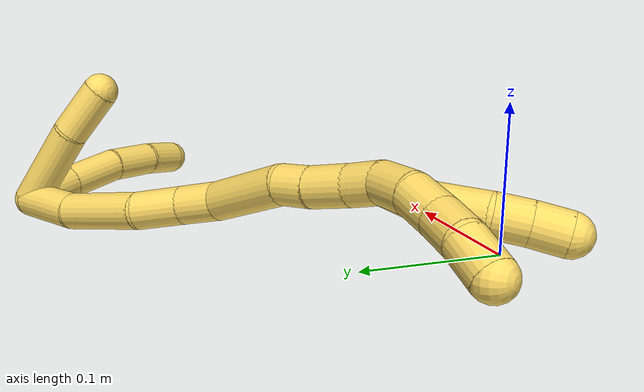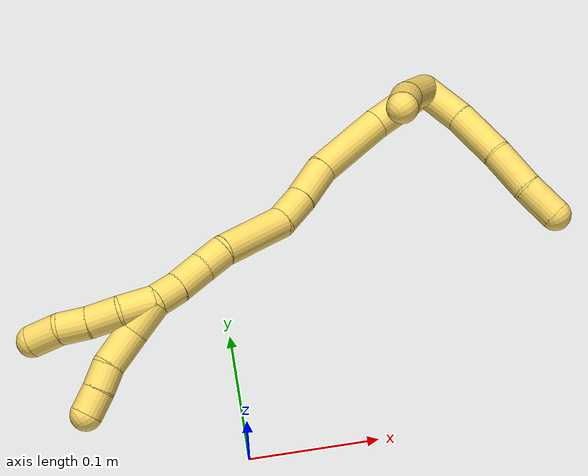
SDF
<sdf version="1.7">
 <world name="default">
  <model name="5">
   <static>0</static>
   <link name="5">
    <collision name="collision-cylinder-e_1_2_8">
     <pose>0.007022 0.017968 0.002746 -1.41915 0.368649 -0.317533</pose>
     <geometry><cylinder><radius>0.0125</radius><length>0.038972</length></cylinder></geometry>
     <surface>
      <friction><ode><mu>1.16</mu><mu2>1.16</mu2><slip1>0</slip1><slip2>0</slip2></ode></friction>
      <contact><ode><kp>1e+06</kp><kd>1</kd><max_vel>0</max_vel><min_depth>0.001</min_depth></ode></contact>
     </surface>
    </collision>
    <visual name="visual-cylinder-e_1_2_8">
     <pose>0.007022 0.017968 0.002746 -1.41915 0.368649 -0.317533</pose>
     <geometry><cylinder><radius>0.0125</radius><length>0.038972</length></cylinder></geometry>
     <material><ambient>1 0.858824 0.4 1</ambient></material>
    </visual>
    <collision name="collision-cylinder-e_2_8_9">
     <pose>0.022463 0.056011 0.005733 -1.55876 0.397115 -0.392485</pose>
     <geometry><cylinder><radius>0.0125</radius><length>0.04354</length></cylinder></geometry>
     <surface>
      <friction><ode><mu>1.16</mu><mu2>1.16</mu2><slip1>0</slip1><slip2>0</slip2></ode></friction>
      <contact><ode><kp>1e+06</kp><kd>1</kd><max_vel>0</max_vel><min_depth>0.001</min_depth></ode></contact>
     </surface>
    </collision>
    <visual name="visual-cylinder-e_2_8_9">
     <pose>0.022463 0.056011 0.005733 -1.55876 0.397115 -0.392485</pose>
     <geometry><cylinder><radius>0.0125</radius><length>0.04354</length></cylinder></geometry>
     <material><ambient>1 0.858824 0.4 1</ambient></material>
    </visual>
    <collision name="collision-cylinder-e_3_9_10">
     <pose>0.035052 0.093831 0.006143 -1.56134 0.230723 -0.228572</pose>
     <geometry><cylinder><radius>0.0125</radius><length>0.036459</length></cylinder></geometry>
     <surface>
      <friction><ode><mu>1.16</mu><mu2>1.16</mu2><slip1>0</slip1><slip2>0</slip2></ode></friction>
      <contact><ode><kp>1e+06</kp><kd>1</kd><max_vel>0</max_vel><min_depth>0.001</min_depth></ode></contact>
     </surface>
    </collision>
    <visual name="visual-cylinder-e_3_9_10">
     <pose>0.035052 0.093831 0.006143 -1.56134 0.230723 -0.228572</pose>
     <geometry><cylinder><radius>0.0125</radius><length>0.036459</length></cylinder></geometry>
     <material><ambient>1 0.858824 0.4 1</ambient></material>
    </visual>
    <collision name="collision-cylinder-e_4_10_6">
     <pose>0.041072 0.126845 0.008351 -1.43793 0.119627 -0.104731</pose>
     <geometry><cylinder><radius>0.0125</radius><length>0.031029</length></cylinder></geometry>
     <surface>
      <friction><ode><mu>1.16</mu><mu2>1.16</mu2><slip1>0</slip1><slip2>0</slip2></ode></friction>
      <contact><ode><kp>1e+06</kp><kd>1</kd><max_vel>0</max_vel><min_depth>0.001</min_depth></ode></contact>
     </surface>
    </collision>
    <visual name="visual-cylinder-e_4_10_6">
     <pose>0.041072 0.126845 0.008351 -1.43793 0.119627 -0.104731</pose>
     <geometry><cylinder><radius>0.0125</radius><length>0.031029</length></cylinder></geometry>
     <material><ambient>1 0.858824 0.4 1</ambient></material>
    </visual>
    <collision name="collision-cylinder-e_1_2_11">
     <pose>0.026098 -0.000328 -0.017367 3.12269 0.983554 3.1063</pose>
     <geometry><cylinder><radius>0.0125</radius><length>0.0627</length></cylinder></geometry>
     <surface>
      <friction><ode><mu>1.16</mu><mu2>1.16</mu2><slip1>0</slip1><slip2>0</slip2></ode></friction>
      <contact><ode><kp>1e+06</kp><kd>1</kd><max_vel>0</max_vel><min_depth>0.001</min_depth></ode></contact>
     </surface>
    </collision>
    <visual name="visual-cylinder-e_1_2_11">
     <pose>0.026098 -0.000328 -0.017367 3.12269 0.983554 3.1063</pose>
     <geometry><cylinder><radius>0.0125</radius><length>0.0627</length></cylinder></geometry>
     <material><ambient>1 0.858824 0.4 1</ambient></material>
    </visual>
    <collision name="collision-cylinder-e_2_11_5">
     <pose>0.067985 0.002392 -0.04418 -2.82942 1.00955 -2.58665</pose>
     <geometry><cylinder><radius>0.0125</radius><length>0.0373</length></cylinder></geometry>
     <surface>
      <friction><ode><mu>1.16</mu><mu2>1.16</mu2><slip1>0</slip1><slip2>0</slip2></ode></friction>
      <contact><ode><kp>1e+06</kp><kd>1</kd><max_vel>0</max_vel><min_depth>0.001</min_depth></ode></contact>
     </surface>
    </collision>
    <visual name="visual-cylinder-e_2_11_5">
     <pose>0.067985 0.002392 -0.04418 -2.82942 1.00955 -2.58665</pose>
     <geometry><cylinder><radius>0.0125</radius><length>0.0373</length></cylinder></geometry>
     <material><ambient>1 0.858824 0.4 1</ambient></material>
    </visual>
    <collision name="collision-cylinder-e_1_2_12">
     <pose>-0.000958 -0.000184 -0.024807 3.13419 -0.038578 -2.76253</pose>
     <geometry><cylinder><radius>0.0125</radius><length>0.049652</length></cylinder></geometry>
     <surface>
      <friction><ode><mu>1.16</mu><mu2>1.16</mu2><slip1>0</slip1><slip2>0</slip2></ode></friction>
      <contact><ode><kp>1e+06</kp><kd>1</kd><max_vel>0</max_vel><min_depth>0.001</min_depth></ode></contact>
     </surface>
    </collision>
    <visual name="visual-cylinder-e_1_2_12">
     <pose>-0.000958 -0.000184 -0.024807 3.13419 -0.038578 -2.76253</pose>
     <geometry><cylinder><radius>0.0125</radius><length>0.049652</length></cylinder></geometry>
     <material><ambient>1 0.858824 0.4 1</ambient></material>
    </visual>
    <collision name="collision-cylinder-e_2_12_13">
     <pose>0.002902 0.001955 -0.080595 -3.06678 0.153823 -2.23744</pose>
     <geometry><cylinder><radius>0.0125</radius><length>0.06288</length></cylinder></geometry>
     <surface>
      <friction><ode><mu>1.16</mu><mu2>1.16</mu2><slip1>0</slip1><slip2>0</slip2></ode></friction>
      <contact><ode><kp>1e+06</kp><kd>1</kd><max_vel>0</max_vel><min_depth>0.001</min_depth></ode></contact>
     </surface>
    </collision>
    <visual name="visual-cylinder-e_2_12_13">
     <pose>0.002902 0.001955 -0.080595 -3.06678 0.153823 -2.23744</pose>
     <geometry><cylinder><radius>0.0125</radius><length>0.06288</length></cylinder></geometry>
     <material><ambient>1 0.858824 0.4 1</ambient></material>
    </visual>
    <collision name="collision-cylinder-e_3_13_14">
     <pose>0.012076 0.009207 -0.127029 -2.83274 0.262421 -1.40638</pose>
     <geometry><cylinder><radius>0.0125</radius><length>0.033588</length></cylinder></geometry>
     <surface>
      <friction><ode><mu>1.16</mu><mu2>1.16</mu2><slip1>0</slip1><slip2>0</slip2></ode></friction>
      <contact><ode><kp>1e+06</kp><kd>1</kd><max_vel>0</max_vel><min_depth>0.001</min_depth></ode></contact>
     </surface>
    </collision>
    <visual name="visual-cylinder-e_3_13_14">
     <pose>0.012076 0.009207 -0.127029 -2.83274 0.262421 -1.40638</pose>
     <geometry><cylinder><radius>0.0125</radius><length>0.033588</length></cylinder></geometry>
     <material><ambient>1 0.858824 0.4 1</ambient></material>
    </visual>
    <collision name="collision-cylinder-e_4_14_15">
     <pose>0.019801 0.016918 -0.155208 -2.92652 0.253001 -1.73395</pose>
     <geometry><cylinder><radius>0.0125</radius><length>0.026913</length></cylinder></geometry>
     <surface>
      <friction><ode><mu>1.16</mu><mu2>1.16</mu2><slip1>0</slip1><slip2>0</slip2></ode></friction>
      <contact><ode><kp>1e+06</kp><kd>1</kd><max_vel>0</max_vel><min_depth>0.001</min_depth></ode></contact>
     </surface>
    </collision>
    <visual name="visual-cylinder-e_4_14_15">
     <pose>0.019801 0.016918 -0.155208 -2.92652 0.253001 -1.73395</pose>
     <geometry><cylinder><radius>0.0125</radius><length>0.026913</length></cylinder></geometry>
     <material><ambient>1 0.858824 0.4 1</ambient></material>
    </visual>
    <collision name="collision-cylinder-e_5_15_16">
     <pose>0.031708 0.016126 -0.195482 3.01264 0.298259 2.32982</pose>
     <geometry><cylinder><radius>0.0125</radius><length>0.058119</length></cylinder></geometry>
     <surface>
      <friction><ode><mu>1.16</mu><mu2>1.16</mu2><slip1>0</slip1><slip2>0</slip2></ode></friction>
      <contact><ode><kp>1e+06</kp><kd>1</kd><max_vel>0</max_vel><min_depth>0.001</min_depth></ode></contact>
     </surface>
    </collision>
    <visual name="visual-cylinder-e_5_15_16">
     <pose>0.031708 0.016126 -0.195482 3.01264 0.298259 2.32982</pose>
     <geometry><cylinder><radius>0.0125</radius><length>0.058119</length></cylinder></geometry>
     <material><ambient>1 0.858824 0.4 1</ambient></material>
    </visual>
    <collision name="collision-cylinder-e_6_16_17">
     <pose>0.040819 0.013035 -0.233577 -3.0961 0.054048 -1.74222</pose>
     <geometry><cylinder><radius>0.0125</radius><length>0.021151</length></cylinder></geometry>
     <surface>
      <friction><ode><mu>1.16</mu><mu2>1.16</mu2><slip1>0</slip1><slip2>0</slip2></ode></friction>
      <contact><ode><kp>1e+06</kp><kd>1</kd><max_vel>0</max_vel><min_depth>0.001</min_depth></ode></contact>
     </surface>
    </collision>
    <visual name="visual-cylinder-e_6_16_17">
     <pose>0.040819 0.013035 -0.233577 -3.0961 0.054048 -1.74222</pose>
     <geometry><cylinder><radius>0.0125</radius><length>0.021151</length></cylinder></geometry>
     <material><ambient>1 0.858824 0.4 1</ambient></material>
    </visual>
    <collision name="collision-cylinder-e_7_17_18">
     <pose>0.043659 0.014318 -0.257188 -3.08017 0.171683 -2.45581</pose>
     <geometry><cylinder><radius>0.0125</radius><length>0.026564</length></cylinder></geometry>
     <surface>
      <friction><ode><mu>1.16</mu><mu2>1.16</mu2><slip1>0</slip1><slip2>0</slip2></ode></friction>
      <contact><ode><kp>1e+06</kp><kd>1</kd><max_vel>0</max_vel><min_depth>0.001</min_depth></ode></contact>
     </surface>
    </collision>
    <visual name="visual-cylinder-e_7_17_18">
     <pose>0.043659 0.014318 -0.257188 -3.08017 0.171683 -2.45581</pose>
     <geometry><cylinder><radius>0.0125</radius><length>0.026564</length></cylinder></geometry>
     <material><ambient>1 0.858824 0.4 1</ambient></material>
    </visual>
    <collision name="collision-cylinder-e_8_18_1">
     <pose>0.048003 0.014583 -0.280597 3.08956 0.197644 2.62825</pose>
     <geometry><cylinder><radius>0.0125</radius><length>0.021133</length></cylinder></geometry>
     <surface>
      <friction><ode><mu>1.16</mu><mu2>1.16</mu2><slip1>0</slip1><slip2>0</slip2></ode></friction>
      <contact><ode><kp>1e+06</kp><kd>1</kd><max_vel>0</max_vel><min_depth>0.001</min_depth></ode></contact>
     </surface>
    </collision>
    <visual name="visual-cylinder-e_8_18_1">
     <pose>0.048003 0.014583 -0.280597 3.08956 0.197644 2.62825</pose>
     <geometry><cylinder><radius>0.0125</radius><length>0.021133</length></cylinder></geometry>
     <material><ambient>1 0.858824 0.4 1</ambient></material>
    </visual>
    <collision name="collision-cylinder-e_1_1_19">
     <pose>0.048398 0.009532 -0.303604 2.79925 -0.124399 -0.691604</pose>
     <geometry><cylinder><radius>0.0125</radius><length>0.027088</length></cylinder></geometry>
     <surface>
      <friction><ode><mu>1.16</mu><mu2>1.16</mu2><slip1>0</slip1><slip2>0</slip2></ode></friction>
      <contact><ode><kp>1e+06</kp><kd>1</kd><max_vel>0</max_vel><min_depth>0.001</min_depth></ode></contact>
     </surface>
    </collision>
    <visual name="visual-cylinder-e_1_1_19">
     <pose>0.048398 0.009532 -0.303604 2.79925 -0.124399 -0.691604</pose>
     <geometry><cylinder><radius>0.0125</radius><length>0.027088</length></cylinder></geometry>
     <material><ambient>1 0.858824 0.4 1</ambient></material>
    </visual>
    <collision name="collision-cylinder-e_2_19_20">
     <pose>0.042033 0.001269 -0.327335 2.81486 -0.381129 -1.72741</pose>
     <geometry><cylinder><radius>0.0125</radius><length>0.025189</length></cylinder></geometry>
     <surface>
      <friction><ode><mu>1.16</mu><mu2>1.16</mu2><slip1>0</slip1><slip2>0</slip2></ode></friction>
      <contact><ode><kp>1e+06</kp><kd>1</kd><max_vel>0</max_vel><min_depth>0.001</min_depth></ode></contact>
     </surface>
    </collision>
    <visual name="visual-cylinder-e_2_19_20">
     <pose>0.042033 0.001269 -0.327335 2.81486 -0.381129 -1.72741</pose>
     <geometry><cylinder><radius>0.0125</radius><length>0.025189</length></cylinder></geometry>
     <material><ambient>1 0.858824 0.4 1</ambient></material>
    </visual>
    <collision name="collision-cylinder-e_3_20_21">
     <pose>0.03314 -0.007121 -0.348166 2.69794 -0.371366 -1.38894</pose>
     <geometry><cylinder><radius>0.0125</radius><length>0.023191</length></cylinder></geometry>
     <surface>
      <friction><ode><mu>1.16</mu><mu2>1.16</mu2><slip1>0</slip1><slip2>0</slip2></ode></friction>
      <contact><ode><kp>1e+06</kp><kd>1</kd><max_vel>0</max_vel><min_depth>0.001</min_depth></ode></contact>
     </surface>
    </collision>
    <visual name="visual-cylinder-e_3_20_21">
     <pose>0.03314 -0.007121 -0.348166 2.69794 -0.371366 -1.38894</pose>
     <geometry><cylinder><radius>0.0125</radius><length>0.023191</length></cylinder></geometry>
     <material><ambient>1 0.858824 0.4 1</ambient></material>
    </visual>
    <collision name="collision-cylinder-e_4_21_4">
     <pose>0.022115 -0.014393 -0.367776 2.88034 -0.58932 -2.32456</pose>
     <geometry><cylinder><radius>0.0125</radius><length>0.024533</length></cylinder></geometry>
     <surface>
      <friction><ode><mu>1.16</mu><mu2>1.16</mu2><slip1>0</slip1><slip2>0</slip2></ode></friction>
      <contact><ode><kp>1e+06</kp><kd>1</kd><max_vel>0</max_vel><min_depth>0.001</min_depth></ode></contact>
     </surface>
    </collision>
    <visual name="visual-cylinder-e_4_21_4">
     <pose>0.022115 -0.014393 -0.367776 2.88034 -0.58932 -2.32456</pose>
     <geometry><cylinder><radius>0.0125</radius><length>0.024533</length></cylinder></geometry>
     <material><ambient>1 0.858824 0.4 1</ambient></material>
    </visual>
    <collision name="collision-cylinder-e_1_1_22">
     <pose>0.04632 0.018226 -0.3039 -2.82932 -0.269323 1.42128</pose>
     <geometry><cylinder><radius>0.0125</radius><length>0.028247</length></cylinder></geometry>
     <surface>
      <friction><ode><mu>1.16</mu><mu2>1.16</mu2><slip1>0</slip1><slip2>0</slip2></ode></friction>
      <contact><ode><kp>1e+06</kp><kd>1</kd><max_vel>0</max_vel><min_depth>0.001</min_depth></ode></contact>
     </surface>
    </collision>
    <visual name="visual-cylinder-e_1_1_22">
     <pose>0.04632 0.018226 -0.3039 -2.82932 -0.269323 1.42128</pose>
     <geometry><cylinder><radius>0.0125</radius><length>0.028247</length></cylinder></geometry>
     <material><ambient>1 0.858824 0.4 1</ambient></material>
    </visual>
    <collision name="collision-cylinder-e_2_22_23">
     <pose>0.0422 0.027324 -0.331855 -2.82493 -0.022986 0.143718</pose>
     <geometry><cylinder><radius>0.0125</radius><length>0.031575</length></cylinder></geometry>
     <surface>
      <friction><ode><mu>1.16</mu><mu2>1.16</mu2><slip1>0</slip1><slip2>0</slip2></ode></friction>
      <contact><ode><kp>1e+06</kp><kd>1</kd><max_vel>0</max_vel><min_depth>0.001</min_depth></ode></contact>
     </surface>
    </collision>
    <visual name="visual-cylinder-e_2_22_23">
     <pose>0.0422 0.027324 -0.331855 -2.82493 -0.022986 0.143718</pose>
     <geometry><cylinder><radius>0.0125</radius><length>0.031575</length></cylinder></geometry>
     <material><ambient>1 0.858824 0.4 1</ambient></material>
    </visual>
    <collision name="collision-cylinder-e_3_23_24">
     <pose>0.041113 0.037569 -0.355318 -2.57968 -0.072176 0.248916</pose>
     <geometry><cylinder><radius>0.0125</radius><length>0.020057</length></cylinder></geometry>
     <surface>
      <friction><ode><mu>1.16</mu><mu2>1.16</mu2><slip1>0</slip1><slip2>0</slip2></ode></friction>
      <contact><ode><kp>1e+06</kp><kd>1</kd><max_vel>0</max_vel><min_depth>0.001</min_depth></ode></contact>
     </surface>
    </collision>
    <visual name="visual-cylinder-e_3_23_24">
     <pose>0.041113 0.037569 -0.355318 -2.57968 -0.072176 0.248916</pose>
     <geometry><cylinder><radius>0.0125</radius><length>0.020057</length></cylinder></geometry>
     <material><ambient>1 0.858824 0.4 1</ambient></material>
    </visual>
    <collision name="collision-cylinder-e_4_24_3">
     <pose>0.039077 0.04752 -0.372621 -2.65978 -0.130899 0.521426</pose>
     <geometry><cylinder><radius>0.0125</radius><length>0.02012</length></cylinder></geometry>
     <surface>
      <friction><ode><mu>1.16</mu><mu2>1.16</mu2><slip1>0</slip1><slip2>0</slip2></ode></friction>
      <contact><ode><kp>1e+06</kp><kd>1</kd><max_vel>0</max_vel><min_depth>0.001</min_depth></ode></contact>
     </surface>
    </collision>
    <visual name="visual-cylinder-e_4_24_3">
     <pose>0.039077 0.04752 -0.372621 -2.65978 -0.130899 0.521426</pose>
     <geometry><cylinder><radius>0.0125</radius><length>0.02012</length></cylinder></geometry>
     <material><ambient>1 0.858824 0.4 1</ambient></material>
    </visual>
    <collision name="collision-sphere-3">
     <pose>0.037764 0.052142 -0.38146 0 -0 0</pose>
     <geometry><sphere><radius>0.0125</radius></sphere></geometry>
     <surface>
      <friction><ode><mu>1.16</mu><mu2>1.16</mu2><slip1>0</slip1><slip2>0</slip2></ode></friction>
      <contact><ode><kp>1e+06</kp><kd>1</kd><max_vel>0</max_vel><min_depth>0.001</min_depth></ode></contact>
     </surface>
    </collision>
    <visual name="visual-sphere-3">
     <pose>0.037764 0.052142 -0.38146 0 -0 0</pose>
     <geometry><sphere><radius>0.0125</radius></sphere></geometry>
     <material><ambient>1 0.858824 0.4 1</ambient></material>
    </visual>
    <collision name="collision-sphere-24">
     <pose>0.04039 0.042898 -0.363783 0 -0 0</pose>
     <geometry><sphere><radius>0.0125</radius></sphere></geometry>
     <surface>
      <friction><ode><mu>1.16</mu><mu2>1.16</mu2><slip1>0</slip1><slip2>0</slip2></ode></friction>
      <contact><ode><kp>1e+06</kp><kd>1</kd><max_vel>0</max_vel><min_depth>0.001</min_depth></ode></contact>
     </surface>
    </collision>
    <visual name="visual-sphere-24">
     <pose>0.04039 0.042898 -0.363783 0 -0 0</pose>
     <geometry><sphere><radius>0.0125</radius></sphere></geometry>
     <material><ambient>1 0.858824 0.4 1</ambient></material>
    </visual>
    <collision name="collision-sphere-23">
     <pose>0.041837 0.032239 -0.346854 0 -0 0</pose>
     <geometry><sphere><radius>0.0125</radius></sphere></geometry>
     <surface>
      <friction><ode><mu>1.16</mu><mu2>1.16</mu2><slip1>0</slip1><slip2>0</slip2></ode></friction>
      <contact><ode><kp>1e+06</kp><kd>1</kd><max_vel>0</max_vel><min_depth>0.001</min_depth></ode></contact>
     </surface>
    </collision>
    <visual name="visual-sphere-23">
     <pose>0.041837 0.032239 -0.346854 0 -0 0</pose>
     <geometry><sphere><radius>0.0125</radius></sphere></geometry>
     <material><ambient>1 0.858824 0.4 1</ambient></material>
    </visual>
    <collision name="collision-sphere-22">
     <pose>0.042562 0.022409 -0.316856 0 -0 0</pose>
     <geometry><sphere><radius>0.0125</radius></sphere></geometry>
     <surface>
      <friction><ode><mu>1.16</mu><mu2>1.16</mu2><slip1>0</slip1><slip2>0</slip2></ode></friction>
      <contact><ode><kp>1e+06</kp><kd>1</kd><max_vel>0</max_vel><min_depth>0.001</min_depth></ode></contact>
     </surface>
    </collision>
    <visual name="visual-sphere-22">
     <pose>0.042562 0.022409 -0.316856 0 -0 0</pose>
     <geometry><sphere><radius>0.0125</radius></sphere></geometry>
     <material><ambient>1 0.858824 0.4 1</ambient></material>
    </visual>
    <collision name="collision-sphere-4">
     <pose>0.015297 -0.017027 -0.377628 0 -0 0</pose>
     <geometry><sphere><radius>0.0125</radius></sphere></geometry>
     <surface>
      <friction><ode><mu>1.16</mu><mu2>1.16</mu2><slip1>0</slip1><slip2>0</slip2></ode></friction>
      <contact><ode><kp>1e+06</kp><kd>1</kd><max_vel>0</max_vel><min_depth>0.001</min_depth></ode></contact>
     </surface>
    </collision>
    <visual name="visual-sphere-4">
     <pose>0.015297 -0.017027 -0.377628 0 -0 0</pose>
     <geometry><sphere><radius>0.0125</radius></sphere></geometry>
     <material><ambient>1 0.858824 0.4 1</ambient></material>
    </visual>
    <collision name="collision-sphere-21">
     <pose>0.028932 -0.011759 -0.357925 0 -0 0</pose>
     <geometry><sphere><radius>0.0125</radius></sphere></geometry>
     <surface>
      <friction><ode><mu>1.16</mu><mu2>1.16</mu2><slip1>0</slip1><slip2>0</slip2></ode></friction>
      <contact><ode><kp>1e+06</kp><kd>1</kd><max_vel>0</max_vel><min_depth>0.001</min_depth></ode></contact>
     </surface>
    </collision>
    <visual name="visual-sphere-21">
     <pose>0.028932 -0.011759 -0.357925 0 -0 0</pose>
     <geometry><sphere><radius>0.0125</radius></sphere></geometry>
     <material><ambient>1 0.858824 0.4 1</ambient></material>
    </visual>
    <collision name="collision-sphere-20">
     <pose>0.037348 -0.002484 -0.338407 0 -0 0</pose>
     <geometry><sphere><radius>0.0125</radius></sphere></geometry>
     <surface>
      <friction><ode><mu>1.16</mu><mu2>1.16</mu2><slip1>0</slip1><slip2>0</slip2></ode></friction>
      <contact><ode><kp>1e+06</kp><kd>1</kd><max_vel>0</max_vel><min_depth>0.001</min_depth></ode></contact>
     </surface>
    </collision>
    <visual name="visual-sphere-20">
     <pose>0.037348 -0.002484 -0.338407 0 -0 0</pose>
     <geometry><sphere><radius>0.0125</radius></sphere></geometry>
     <material><ambient>1 0.858824 0.4 1</ambient></material>
    </visual>
    <collision name="collision-sphere-11">
     <pose>0.052196 -0.000657 -0.034734 0 -0 0</pose>
     <geometry><sphere><radius>0.0125</radius></sphere></geometry>
     <surface>
      <friction><ode><mu>1.16</mu><mu2>1.16</mu2><slip1>0</slip1><slip2>0</slip2></ode></friction>
      <contact><ode><kp>1e+06</kp><kd>1</kd><max_vel>0</max_vel><min_depth>0.001</min_depth></ode></contact>
     </surface>
    </collision>
    <visual name="visual-sphere-11">
     <pose>0.052196 -0.000657 -0.034734 0 -0 0</pose>
     <geometry><sphere><radius>0.0125</radius></sphere></geometry>
     <material><ambient>1 0.858824 0.4 1</ambient></material>
    </visual>
    <collision name="collision-sphere-6">
     <pose>0.042924 0.142112 0.010392 0 -0 0</pose>
     <geometry><sphere><radius>0.0125</radius></sphere></geometry>
     <surface>
      <friction><ode><mu>1.16</mu><mu2>1.16</mu2><slip1>0</slip1><slip2>0</slip2></ode></friction>
      <contact><ode><kp>1e+06</kp><kd>1</kd><max_vel>0</max_vel><min_depth>0.001</min_depth></ode></contact>
     </surface>
    </collision>
    <visual name="visual-sphere-6">
     <pose>0.042924 0.142112 0.010392 0 -0 0</pose>
     <geometry><sphere><radius>0.0125</radius></sphere></geometry>
     <material><ambient>1 0.858824 0.4 1</ambient></material>
    </visual>
    <collision name="collision-sphere-10">
     <pose>0.039221 0.111577 0.00631 0 -0 0</pose>
     <geometry><sphere><radius>0.0125</radius></sphere></geometry>
     <surface>
      <friction><ode><mu>1.16</mu><mu2>1.16</mu2><slip1>0</slip1><slip2>0</slip2></ode></friction>
      <contact><ode><kp>1e+06</kp><kd>1</kd><max_vel>0</max_vel><min_depth>0.001</min_depth></ode></contact>
     </surface>
    </collision>
    <visual name="visual-sphere-10">
     <pose>0.039221 0.111577 0.00631 0 -0 0</pose>
     <geometry><sphere><radius>0.0125</radius></sphere></geometry>
     <material><ambient>1 0.858824 0.4 1</ambient></material>
    </visual>
    <collision name="collision-sphere-9">
     <pose>0.030883 0.076085 0.005975 0 -0 0</pose>
     <geometry><sphere><radius>0.0125</radius></sphere></geometry>
     <surface>
      <friction><ode><mu>1.16</mu><mu2>1.16</mu2><slip1>0</slip1><slip2>0</slip2></ode></friction>
      <contact><ode><kp>1e+06</kp><kd>1</kd><max_vel>0</max_vel><min_depth>0.001</min_depth></ode></contact>
     </surface>
    </collision>
    <visual name="visual-sphere-9">
     <pose>0.030883 0.076085 0.005975 0 -0 0</pose>
     <geometry><sphere><radius>0.0125</radius></sphere></geometry>
     <material><ambient>1 0.858824 0.4 1</ambient></material>
    </visual>
    <collision name="collision-sphere-2">
     <geometry><sphere><radius>0.0125</radius></sphere></geometry>
     <surface>
      <friction><ode><mu>1.16</mu><mu2>1.16</mu2><slip1>0</slip1><slip2>0</slip2></ode></friction>
      <contact><ode><kp>1e+06</kp><kd>1</kd><max_vel>0</max_vel><min_depth>0.001</min_depth></ode></contact>
     </surface>
    </collision>
    <visual name="visual-sphere-2">
     <geometry><sphere><radius>0.0125</radius></sphere></geometry>
     <material><ambient>1 0.858824 0.4 1</ambient></material>
    </visual>
    <collision name="collision-sphere-19">
     <pose>0.046717 0.005021 -0.316263 0 -0 0</pose>
     <geometry><sphere><radius>0.0125</radius></sphere></geometry>
     <surface>
      <friction><ode><mu>1.16</mu><mu2>1.16</mu2><slip1>0</slip1><slip2>0</slip2></ode></friction>
      <contact><ode><kp>1e+06</kp><kd>1</kd><max_vel>0</max_vel><min_depth>0.001</min_depth></ode></contact>
     </surface>
    </collision>
    <visual name="visual-sphere-19">
     <pose>0.046717 0.005021 -0.316263 0 -0 0</pose>
     <geometry><sphere><radius>0.0125</radius></sphere></geometry>
     <material><ambient>1 0.858824 0.4 1</ambient></material>
    </visual>
    <collision name="collision-sphere-8">
     <pose>0.014044 0.035936 0.005492 0 -0 0</pose>
     <geometry><sphere><radius>0.0125</radius></sphere></geometry>
     <surface>
      <friction><ode><mu>1.16</mu><mu2>1.16</mu2><slip1>0</slip1><slip2>0</slip2></ode></friction>
      <contact><ode><kp>1e+06</kp><kd>1</kd><max_vel>0</max_vel><min_depth>0.001</min_depth></ode></contact>
     </surface>
    </collision>
    <visual name="visual-sphere-8">
     <pose>0.014044 0.035936 0.005492 0 -0 0</pose>
     <geometry><sphere><radius>0.0125</radius></sphere></geometry>
     <material><ambient>1 0.858824 0.4 1</ambient></material>
    </visual>
    <collision name="collision-sphere-5">
     <pose>0.083774 0.005441 -0.053627 0 -0 0</pose>
     <geometry><sphere><radius>0.0125</radius></sphere></geometry>
     <surface>
      <friction><ode><mu>1.16</mu><mu2>1.16</mu2><slip1>0</slip1><slip2>0</slip2></ode></friction>
      <contact><ode><kp>1e+06</kp><kd>1</kd><max_vel>0</max_vel><min_depth>0.001</min_depth></ode></contact>
     </surface>
    </collision>
    <visual name="visual-sphere-5">
     <pose>0.083774 0.005441 -0.053627 0 -0 0</pose>
     <geometry><sphere><radius>0.0125</radius></sphere></geometry>
     <material><ambient>1 0.858824 0.4 1</ambient></material>
    </visual>
    <collision name="collision-sphere-12">
     <pose>-0.001915 -0.000367 -0.049614 0 -0 0</pose>
     <geometry><sphere><radius>0.0125</radius></sphere></geometry>
     <surface>
      <friction><ode><mu>1.16</mu><mu2>1.16</mu2><slip1>0</slip1><slip2>0</slip2></ode></friction>
      <contact><ode><kp>1e+06</kp><kd>1</kd><max_vel>0</max_vel><min_depth>0.001</min_depth></ode></contact>
     </surface>
    </collision>
    <visual name="visual-sphere-12">
     <pose>-0.001915 -0.000367 -0.049614 0 -0 0</pose>
     <geometry><sphere><radius>0.0125</radius></sphere></geometry>
     <material><ambient>1 0.858824 0.4 1</ambient></material>
    </visual>
    <collision name="collision-sphere-13">
     <pose>0.007719 0.004277 -0.111577 0 -0 0</pose>
     <geometry><sphere><radius>0.0125</radius></sphere></geometry>
     <surface>
      <friction><ode><mu>1.16</mu><mu2>1.16</mu2><slip1>0</slip1><slip2>0</slip2></ode></friction>
      <contact><ode><kp>1e+06</kp><kd>1</kd><max_vel>0</max_vel><min_depth>0.001</min_depth></ode></contact>
     </surface>
    </collision>
    <visual name="visual-sphere-13">
     <pose>0.007719 0.004277 -0.111577 0 -0 0</pose>
     <geometry><sphere><radius>0.0125</radius></sphere></geometry>
     <material><ambient>1 0.858824 0.4 1</ambient></material>
    </visual>
    <collision name="collision-sphere-14">
     <pose>0.016433 0.014137 -0.14248 0 -0 0</pose>
     <geometry><sphere><radius>0.0125</radius></sphere></geometry>
     <surface>
      <friction><ode><mu>1.16</mu><mu2>1.16</mu2><slip1>0</slip1><slip2>0</slip2></ode></friction>
      <contact><ode><kp>1e+06</kp><kd>1</kd><max_vel>0</max_vel><min_depth>0.001</min_depth></ode></contact>
     </surface>
    </collision>
    <visual name="visual-sphere-14">
     <pose>0.016433 0.014137 -0.14248 0 -0 0</pose>
     <geometry><sphere><radius>0.0125</radius></sphere></geometry>
     <material><ambient>1 0.858824 0.4 1</ambient></material>
    </visual>
    <collision name="collision-sphere-15">
     <pose>0.023169 0.019698 -0.167936 0 -0 0</pose>
     <geometry><sphere><radius>0.0125</radius></sphere></geometry>
     <surface>
      <friction><ode><mu>1.16</mu><mu2>1.16</mu2><slip1>0</slip1><slip2>0</slip2></ode></friction>
      <contact><ode><kp>1e+06</kp><kd>1</kd><max_vel>0</max_vel><min_depth>0.001</min_depth></ode></contact>
     </surface>
    </collision>
    <visual name="visual-sphere-15">
     <pose>0.023169 0.019698 -0.167936 0 -0 0</pose>
     <geometry><sphere><radius>0.0125</radius></sphere></geometry>
     <material><ambient>1 0.858824 0.4 1</ambient></material>
    </visual>
    <collision name="collision-sphere-16">
     <pose>0.040248 0.012554 -0.223028 0 -0 0</pose>
     <geometry><sphere><radius>0.0125</radius></sphere></geometry>
     <surface>
      <friction><ode><mu>1.16</mu><mu2>1.16</mu2><slip1>0</slip1><slip2>0</slip2></ode></friction>
      <contact><ode><kp>1e+06</kp><kd>1</kd><max_vel>0</max_vel><min_depth>0.001</min_depth></ode></contact>
     </surface>
    </collision>
    <visual name="visual-sphere-16">
     <pose>0.040248 0.012554 -0.223028 0 -0 0</pose>
     <geometry><sphere><radius>0.0125</radius></sphere></geometry>
     <material><ambient>1 0.858824 0.4 1</ambient></material>
    </visual>
    <collision name="collision-sphere-17">
     <pose>0.04139 0.013515 -0.244126 0 -0 0</pose>
     <geometry><sphere><radius>0.0125</radius></sphere></geometry>
     <surface>
      <friction><ode><mu>1.16</mu><mu2>1.16</mu2><slip1>0</slip1><slip2>0</slip2></ode></friction>
      <contact><ode><kp>1e+06</kp><kd>1</kd><max_vel>0</max_vel><min_depth>0.001</min_depth></ode></contact>
     </surface>
    </collision>
    <visual name="visual-sphere-17">
     <pose>0.04139 0.013515 -0.244126 0 -0 0</pose>
     <geometry><sphere><radius>0.0125</radius></sphere></geometry>
     <material><ambient>1 0.858824 0.4 1</ambient></material>
    </visual>
    <collision name="collision-sphere-18">
     <pose>0.045929 0.015121 -0.27025 0 -0 0</pose>
     <geometry><sphere><radius>0.0125</radius></sphere></geometry>
     <surface>
      <friction><ode><mu>1.16</mu><mu2>1.16</mu2><slip1>0</slip1><slip2>0</slip2></ode></friction>
      <contact><ode><kp>1e+06</kp><kd>1</kd><max_vel>0</max_vel><min_depth>0.001</min_depth></ode></contact>
     </surface>
    </collision>
    <visual name="visual-sphere-18">
     <pose>0.045929 0.015121 -0.27025 0 -0 0</pose>
     <geometry><sphere><radius>0.0125</radius></sphere></geometry>
     <material><ambient>1 0.858824 0.4 1</ambient></material>
    </visual>
    <collision name="collision-sphere-1">
     <pose>0.050078 0.014044 -0.290944 0 -0 0</pose>
     <geometry><sphere><radius>0.0125</radius></sphere></geometry>
     <surface>
      <friction><ode><mu>1.16</mu><mu2>1.16</mu2><slip1>0</slip1><slip2>0</slip2></ode></friction>
      <contact><ode><kp>1e+06</kp><kd>1</kd><max_vel>0</max_vel><min_depth>0.001</min_depth></ode></contact>
     </surface>
    </collision>
    <visual name="visual-sphere-1">
     <pose>0.050078 0.014044 -0.290944 0 -0 0</pose>
     <geometry><sphere><radius>0.0125</radius></sphere></geometry>
     <material><ambient>1 0.858824 0.4 1</ambient></material>
    </visual>
    <inertial>
     <pose>0.02915 0.021605 -0.150609 0 -0 0</pose>
     <mass>0.75</mass>
     <inertia>
      <ixx>-4.6e-05</ixx>
      <ixy>0</ixy>
      <ixz>0</ixz>
      <iyy>5.4e-05</iyy>
      <iyz>0</iyz>
      <izz>-0.000104</izz>
     </inertia>
    </inertial>
   </link>
   <pose>0.184576 0.277764 0.012254 -1.76282 -1.29783 -0.869606</pose>
  </model>
 </world>
</sdf>
